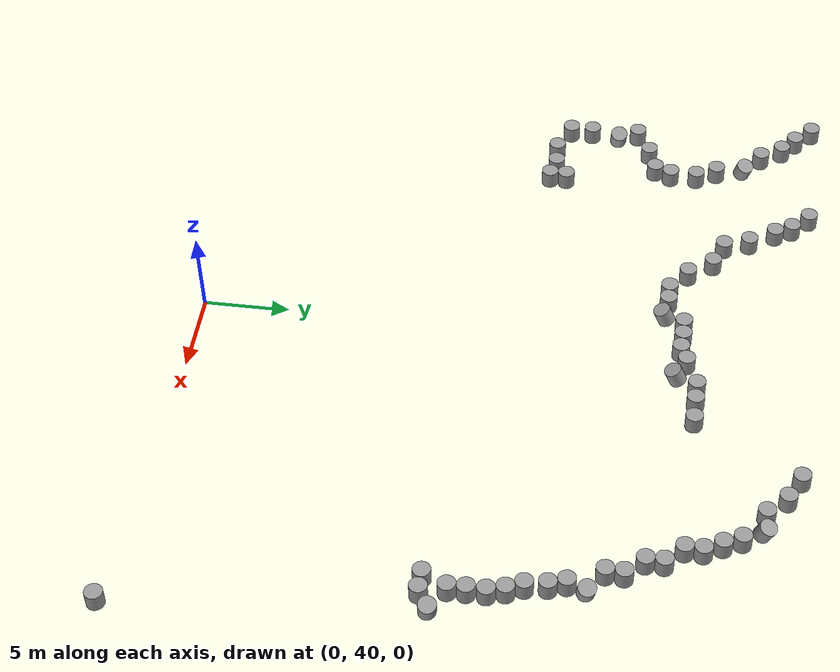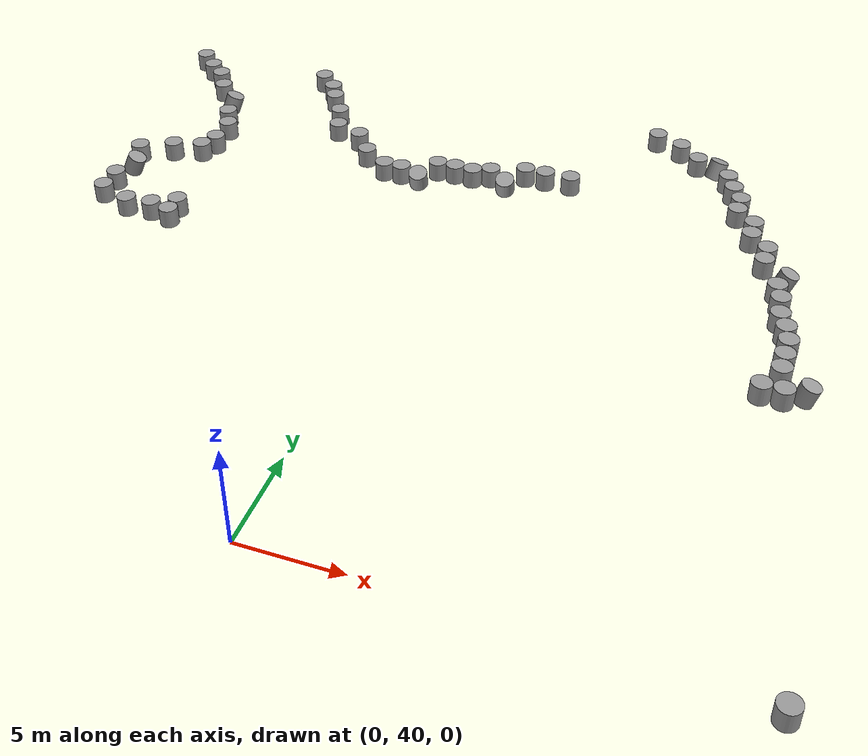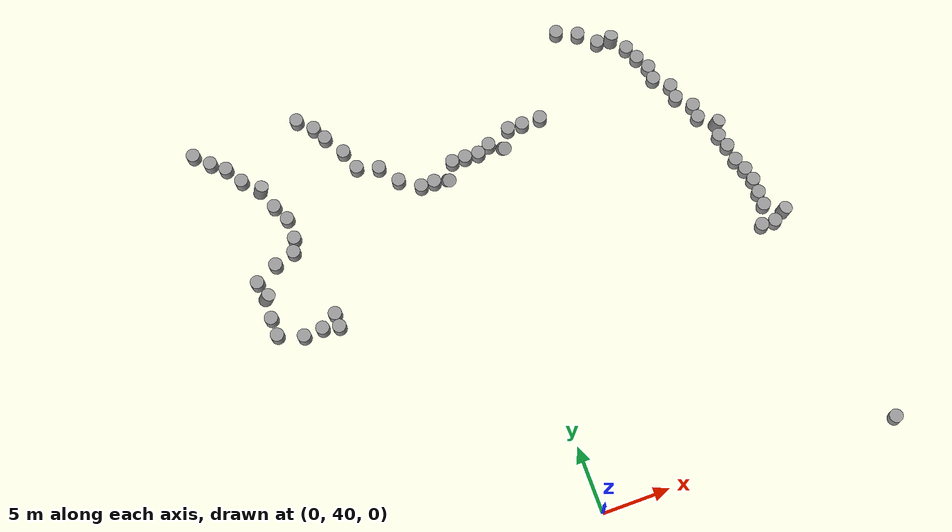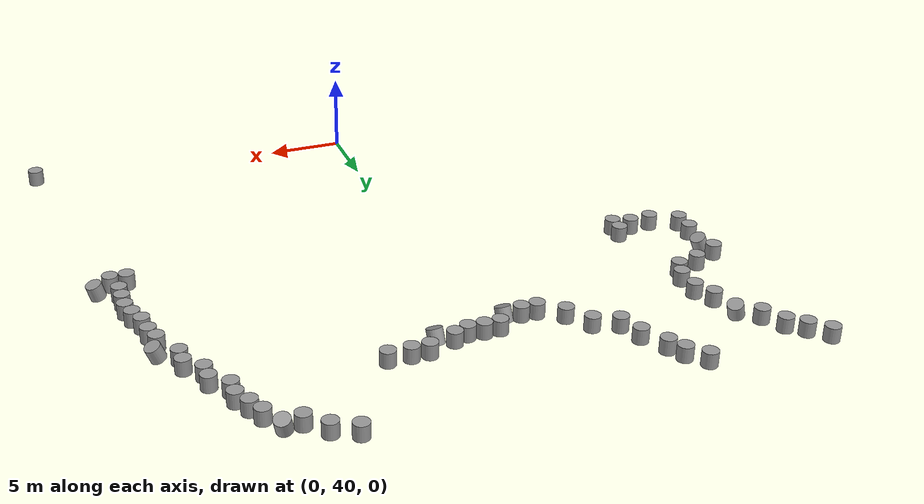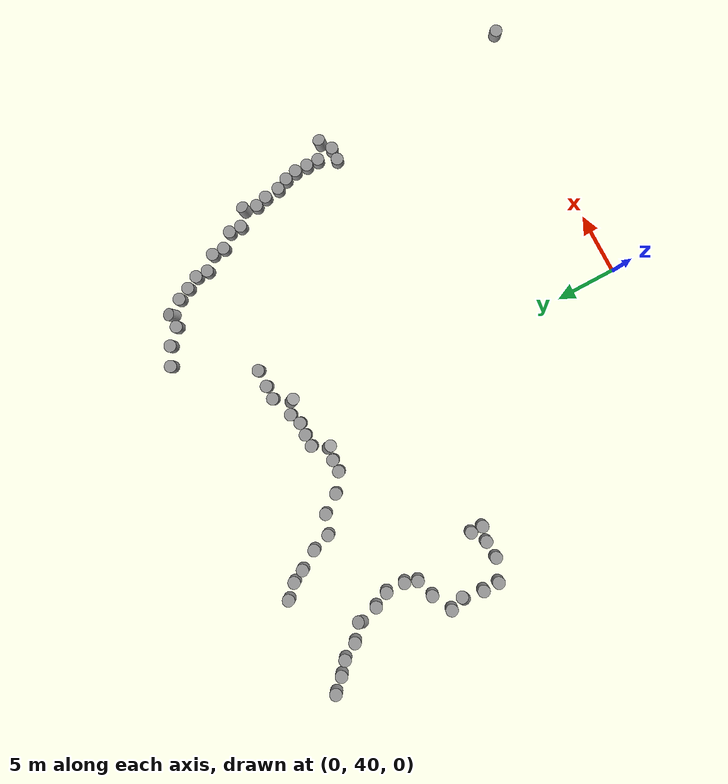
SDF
<sdf version="1.7">
 <world name="default">
  <model name="unit_cylinder">
   <pose>10.9815 74.3057 0.451272 -0.000182 0.00012 -0.00063</pose>
   <link name="link">
    <inertial>
     <mass>1</mass>
     <inertia><ixx>0.145833</ixx><ixy>0</ixy><ixz>0</ixz><iyy>0.145833</iyy><iyz>0</iyz><izz>0.125</izz></inertia>
    </inertial>
    <collision name="collision">
     <geometry><cylinder><radius>0.5</radius><length>1</length></cylinder></geometry>
    </collision>
    <visual name="visual">
     <geometry><cylinder><radius>0.5</radius><length>1</length></cylinder></geometry>
     <material>
      <script><name>Gazebo/Grey</name><uri>file://media/materials/scripts/gazebo.material</uri></script>
     </material>
    </visual>
   </link>
  </model>
  <model name="unit_cylinder_clone_0">
   <pose>12.1286 73.1952 0.453246 -0.005848 0.001541 -0.314889</pose>
   <link name="link">
    <inertial>
     <mass>1</mass>
     <inertia><ixx>0.145833</ixx><ixy>0</ixy><ixz>0</ixz><iyy>0.145833</iyy><iyz>0</iyz><izz>0.125</izz></inertia>
    </inertial>
    <collision name="collision">
     <geometry><cylinder><radius>0.5</radius><length>1</length></cylinder></geometry>
    </collision>
    <visual name="visual">
     <geometry><cylinder><radius>0.5</radius><length>1</length></cylinder></geometry>
     <material>
      <script><name>Gazebo/Grey</name><uri>file://media/materials/scripts/gazebo.material</uri></script>
     </material>
    </visual>
   </link>
  </model>
  <model name="unit_cylinder_clone_1">
   <pose>13.2056 73.1553 0.399914 -0.325351 0.200787 -0.038615</pose>
   <link name="link">
    <inertial>
     <mass>1</mass>
     <inertia><ixx>0.145833</ixx><ixy>0</ixy><ixz>0</ixz><iyy>0.145833</iyy><iyz>0</iyz><izz>0.125</izz></inertia>
    </inertial>
    <collision name="collision">
     <geometry><cylinder><radius>0.5</radius><length>1</length></cylinder></geometry>
    </collision>
    <visual name="visual">
     <geometry><cylinder><radius>0.5</radius><length>1</length></cylinder></geometry>
     <material>
      <script><name>Gazebo/Grey</name><uri>file://media/materials/scripts/gazebo.material</uri></script>
     </material>
    </visual>
   </link>
  </model>
  <model name="unit_cylinder_clone_2">
   <pose>14.0002 72.0002 0.451291 -6.3e-05 0.000114 0.001883</pose>
   <link name="link">
    <inertial>
     <mass>1</mass>
     <inertia><ixx>0.145833</ixx><ixy>0</ixy><ixz>0</ixz><iyy>0.145833</iyy><iyz>0</iyz><izz>0.125</izz></inertia>
    </inertial>
    <collision name="collision">
     <geometry><cylinder><radius>0.5</radius><length>1</length></cylinder></geometry>
    </collision>
    <visual name="visual">
     <geometry><cylinder><radius>0.5</radius><length>1</length></cylinder></geometry>
     <material>
      <script><name>Gazebo/Grey</name><uri>file://media/materials/scripts/gazebo.material</uri></script>
     </material>
    </visual>
   </link>
  </model>
  <model name="unit_cylinder_clone_3">
   <pose>14.4645 70.9999 0.45129 -1e-06 1e-05 -6e-06</pose>
   <link name="link">
    <inertial>
     <mass>1</mass>
     <inertia><ixx>0.145833</ixx><ixy>0</ixy><ixz>0</ixz><iyy>0.145833</iyy><iyz>0</iyz><izz>0.125</izz></inertia>
    </inertial>
    <collision name="collision">
     <geometry><cylinder><radius>0.5</radius><length>1</length></cylinder></geometry>
    </collision>
    <visual name="visual">
     <geometry><cylinder><radius>0.5</radius><length>1</length></cylinder></geometry>
     <material>
      <script><name>Gazebo/Grey</name><uri>file://media/materials/scripts/gazebo.material</uri></script>
     </material>
    </visual>
   </link>
  </model>
  <model name="unit_cylinder_clone_4">
   <pose>14.9998 69.9998 0.451286 -3e-06 -4e-06 -0.000215</pose>
   <link name="link">
    <inertial>
     <mass>1</mass>
     <inertia><ixx>0.145833</ixx><ixy>0</ixy><ixz>0</ixz><iyy>0.145833</iyy><iyz>0</iyz><izz>0.125</izz></inertia>
    </inertial>
    <collision name="collision">
     <geometry><cylinder><radius>0.5</radius><length>1</length></cylinder></geometry>
    </collision>
    <visual name="visual">
     <geometry><cylinder><radius>0.5</radius><length>1</length></cylinder></geometry>
     <material>
      <script><name>Gazebo/Grey</name><uri>file://media/materials/scripts/gazebo.material</uri></script>
     </material>
    </visual>
   </link>
  </model>
  <model name="unit_cylinder_clone_5">
   <pose>15.0001 68.9998 0.451281 1e-06 -7e-06 0.000205</pose>
   <link name="link">
    <inertial>
     <mass>1</mass>
     <inertia><ixx>0.145833</ixx><ixy>0</ixy><ixz>0</ixz><iyy>0.145833</iyy><iyz>0</iyz><izz>0.125</izz></inertia>
    </inertial>
    <collision name="collision">
     <geometry><cylinder><radius>0.5</radius><length>1</length></cylinder></geometry>
    </collision>
    <visual name="visual">
     <geometry><cylinder><radius>0.5</radius><length>1</length></cylinder></geometry>
     <material>
      <script><name>Gazebo/Grey</name><uri>file://media/materials/scripts/gazebo.material</uri></script>
     </material>
    </visual>
   </link>
  </model>
  <model name="unit_cylinder_clone_6">
   <pose>16.0073 68.0187 0.451294 1e-06 -1.5e-05 0.021599</pose>
   <link name="link">
    <inertial>
     <mass>1</mass>
     <inertia><ixx>0.145833</ixx><ixy>0</ixy><ixz>0</ixz><iyy>0.145833</iyy><iyz>0</iyz><izz>0.125</izz></inertia>
    </inertial>
    <collision name="collision">
     <geometry><cylinder><radius>0.5</radius><length>1</length></cylinder></geometry>
    </collision>
    <visual name="visual">
     <geometry><cylinder><radius>0.5</radius><length>1</length></cylinder></geometry>
     <material>
      <script><name>Gazebo/Grey</name><uri>file://media/materials/scripts/gazebo.material</uri></script>
     </material>
    </visual>
   </link>
  </model>
  <model name="unit_cylinder_clone_7">
   <pose>16.0394 67.0187 0.451285 1e-06 -6e-06 0.005178</pose>
   <link name="link">
    <inertial>
     <mass>1</mass>
     <inertia><ixx>0.145833</ixx><ixy>0</ixy><ixz>0</ixz><iyy>0.145833</iyy><iyz>0</iyz><izz>0.125</izz></inertia>
    </inertial>
    <collision name="collision">
     <geometry><cylinder><radius>0.5</radius><length>1</length></cylinder></geometry>
    </collision>
    <visual name="visual">
     <geometry><cylinder><radius>0.5</radius><length>1</length></cylinder></geometry>
     <material>
      <script><name>Gazebo/Grey</name><uri>file://media/materials/scripts/gazebo.material</uri></script>
     </material>
    </visual>
   </link>
  </model>
  <model name="unit_cylinder_clone_8">
   <pose>16.9989 66.0019 0.452892 -0.001909 -0.00089 -0.000228</pose>
   <link name="link">
    <inertial>
     <mass>1</mass>
     <inertia><ixx>0.145833</ixx><ixy>0</ixy><ixz>0</ixz><iyy>0.145833</iyy><iyz>0</iyz><izz>0.125</izz></inertia>
    </inertial>
    <collision name="collision">
     <geometry><cylinder><radius>0.5</radius><length>1</length></cylinder></geometry>
    </collision>
    <visual name="visual">
     <geometry><cylinder><radius>0.5</radius><length>1</length></cylinder></geometry>
     <material>
      <script><name>Gazebo/Grey</name><uri>file://media/materials/scripts/gazebo.material</uri></script>
     </material>
    </visual>
   </link>
  </model>
  <model name="unit_cylinder_clone_11">
   <pose>18.362 60.9371 0.451444 -0.000161 0.00036 -0.029223</pose>
   <link name="link">
    <inertial>
     <mass>1</mass>
     <inertia><ixx>0.145833</ixx><ixy>0</ixy><ixz>0</ixz><iyy>0.145833</iyy><iyz>0</iyz><izz>0.125</izz></inertia>
    </inertial>
    <collision name="collision">
     <geometry><cylinder><radius>0.5</radius><length>1</length></cylinder></geometry>
    </collision>
    <visual name="visual">
     <geometry><cylinder><radius>0.5</radius><length>1</length></cylinder></geometry>
     <material>
      <script><name>Gazebo/Grey</name><uri>file://media/materials/scripts/gazebo.material</uri></script>
     </material>
    </visual>
   </link>
  </model>
  <model name="unit_cylinder_clone_12">
   <pose>18.7639 60.0214 0.451308 3.2e-05 -6.5e-05 0.05836</pose>
   <link name="link">
    <inertial>
     <mass>1</mass>
     <inertia><ixx>0.145833</ixx><ixy>0</ixy><ixz>0</ixz><iyy>0.145833</iyy><iyz>0</iyz><izz>0.125</izz></inertia>
    </inertial>
    <collision name="collision">
     <geometry><cylinder><radius>0.5</radius><length>1</length></cylinder></geometry>
    </collision>
    <visual name="visual">
     <geometry><cylinder><radius>0.5</radius><length>1</length></cylinder></geometry>
     <material>
      <script><name>Gazebo/Grey</name><uri>file://media/materials/scripts/gazebo.material</uri></script>
     </material>
    </visual>
   </link>
  </model>
  <model name="unit_cylinder_clone_13">
   <pose>19.0089 59.0467 0.451293 2.5e-05 -0.000108 0.000934</pose>
   <link name="link">
    <inertial>
     <mass>1</mass>
     <inertia><ixx>0.145833</ixx><ixy>0</ixy><ixz>0</ixz><iyy>0.145833</iyy><iyz>0</iyz><izz>0.125</izz></inertia>
    </inertial>
    <collision name="collision">
     <geometry><cylinder><radius>0.5</radius><length>1</length></cylinder></geometry>
    </collision>
    <visual name="visual">
     <geometry><cylinder><radius>0.5</radius><length>1</length></cylinder></geometry>
     <material>
      <script><name>Gazebo/Grey</name><uri>file://media/materials/scripts/gazebo.material</uri></script>
     </material>
    </visual>
   </link>
  </model>
  <model name="unit_cylinder_clone_14">
   <pose>19.0002 57.9997 0.451442 -6e-06 0.000332 -0.000485</pose>
   <link name="link">
    <inertial>
     <mass>1</mass>
     <inertia><ixx>0.145833</ixx><ixy>0</ixy><ixz>0</ixz><iyy>0.145833</iyy><iyz>0</iyz><izz>0.125</izz></inertia>
    </inertial>
    <collision name="collision">
     <geometry><cylinder><radius>0.5</radius><length>1</length></cylinder></geometry>
    </collision>
    <visual name="visual">
     <geometry><cylinder><radius>0.5</radius><length>1</length></cylinder></geometry>
     <material>
      <script><name>Gazebo/Grey</name><uri>file://media/materials/scripts/gazebo.material</uri></script>
     </material>
    </visual>
   </link>
  </model>
  <model name="unit_cylinder_clone_15">
   <pose>19.0001 56.9993 0.450902 0.000544 0.000122 -0.000184</pose>
   <link name="link">
    <inertial>
     <mass>1</mass>
     <inertia><ixx>0.145833</ixx><ixy>0</ixy><ixz>0</ixz><iyy>0.145833</iyy><iyz>0</iyz><izz>0.125</izz></inertia>
    </inertial>
    <collision name="collision">
     <geometry><cylinder><radius>0.5</radius><length>1</length></cylinder></geometry>
    </collision>
    <visual name="visual">
     <geometry><cylinder><radius>0.5</radius><length>1</length></cylinder></geometry>
     <material>
      <script><name>Gazebo/Grey</name><uri>file://media/materials/scripts/gazebo.material</uri></script>
     </material>
    </visual>
   </link>
  </model>
  <model name="unit_cylinder_clone_16">
   <pose>20.2887 56.1657 0.370309 -0.101618 0.266413 -0.132281</pose>
   <link name="link">
    <inertial>
     <mass>1</mass>
     <inertia><ixx>0.145833</ixx><ixy>0</ixy><ixz>0</ixz><iyy>0.145833</iyy><iyz>0</iyz><izz>0.125</izz></inertia>
    </inertial>
    <collision name="collision">
     <geometry><cylinder><radius>0.5</radius><length>1</length></cylinder></geometry>
    </collision>
    <visual name="visual">
     <geometry><cylinder><radius>0.5</radius><length>1</length></cylinder></geometry>
     <material>
      <script><name>Gazebo/Grey</name><uri>file://media/materials/scripts/gazebo.material</uri></script>
     </material>
    </visual>
   </link>
  </model>
  <model name="unit_cylinder_clone_17">
   <pose>19.3175 55.5652 0.451074 -0.001404 -0.000209 0.07838</pose>
   <link name="link">
    <inertial>
     <mass>1</mass>
     <inertia><ixx>0.145833</ixx><ixy>0</ixy><ixz>0</ixz><iyy>0.145833</iyy><iyz>0</iyz><izz>0.125</izz></inertia>
    </inertial>
    <collision name="collision">
     <geometry><cylinder><radius>0.5</radius><length>1</length></cylinder></geometry>
    </collision>
    <visual name="visual">
     <geometry><cylinder><radius>0.5</radius><length>1</length></cylinder></geometry>
     <material>
      <script><name>Gazebo/Grey</name><uri>file://media/materials/scripts/gazebo.material</uri></script>
     </material>
    </visual>
   </link>
  </model>
  <model name="unit_cylinder_clone_18">
   <pose>18.2992 55.5987 0.450932 -0.000832 -0.000215 -0.020841</pose>
   <link name="link">
    <inertial>
     <mass>1</mass>
     <inertia><ixx>0.145833</ixx><ixy>0</ixy><ixz>0</ixz><iyy>0.145833</iyy><iyz>0</iyz><izz>0.125</izz></inertia>
    </inertial>
    <collision name="collision">
     <geometry><cylinder><radius>0.5</radius><length>1</length></cylinder></geometry>
    </collision>
    <visual name="visual">
     <geometry><cylinder><radius>0.5</radius><length>1</length></cylinder></geometry>
     <material>
      <script><name>Gazebo/Grey</name><uri>file://media/materials/scripts/gazebo.material</uri></script>
     </material>
    </visual>
   </link>
  </model>
  <model name="unit_cylinder_clone">
   <pose>18.2082 62.1497 0.451365 0.000171 1.6e-05 0.137302</pose>
   <link name="link">
    <inertial>
     <mass>1</mass>
     <inertia><ixx>0.145833</ixx><ixy>0</ixy><ixz>0</ixz><iyy>0.145833</iyy><iyz>0</iyz><izz>0.125</izz></inertia>
    </inertial>
    <collision name="collision">
     <geometry><cylinder><radius>0.5</radius><length>1</length></cylinder></geometry>
    </collision>
    <visual name="visual">
     <geometry><cylinder><radius>0.5</radius><length>1</length></cylinder></geometry>
     <material>
      <script><name>Gazebo/Grey</name><uri>file://media/materials/scripts/gazebo.material</uri></script>
     </material>
    </visual>
   </link>
  </model>
  <model name="unit_cylinder_clone_9">
   <pose>17.9166 63.1062 0.452393 0.000739 -0.001652 -0.03629</pose>
   <link name="link">
    <inertial>
     <mass>1</mass>
     <inertia><ixx>0.145833</ixx><ixy>0</ixy><ixz>0</ixz><iyy>0.145833</iyy><iyz>0</iyz><izz>0.125</izz></inertia>
    </inertial>
    <collision name="collision">
     <geometry><cylinder><radius>0.5</radius><length>1</length></cylinder></geometry>
    </collision>
    <visual name="visual">
     <geometry><cylinder><radius>0.5</radius><length>1</length></cylinder></geometry>
     <material>
      <script><name>Gazebo/Grey</name><uri>file://media/materials/scripts/gazebo.material</uri></script>
     </material>
    </visual>
   </link>
  </model>
  <model name="unit_cylinder_clone_10">
   <pose>18.1963 64.147 0.398262 -0.158294 0.340891 -0.163728</pose>
   <link name="link">
    <inertial>
     <mass>1</mass>
     <inertia><ixx>0.145833</ixx><ixy>0</ixy><ixz>0</ixz><iyy>0.145833</iyy><iyz>0</iyz><izz>0.125</izz></inertia>
    </inertial>
    <collision name="collision">
     <geometry><cylinder><radius>0.5</radius><length>1</length></cylinder></geometry>
    </collision>
    <visual name="visual">
     <geometry><cylinder><radius>0.5</radius><length>1</length></cylinder></geometry>
     <material>
      <script><name>Gazebo/Grey</name><uri>file://media/materials/scripts/gazebo.material</uri></script>
     </material>
    </visual>
   </link>
  </model>
  <model name="unit_cylinder_clone_19">
   <pose>16.9993 65.0019 0.45479 -0.001906 -0.000899 0.000167</pose>
   <link name="link">
    <inertial>
     <mass>1</mass>
     <inertia><ixx>0.145833</ixx><ixy>0</ixy><ixz>0</ixz><iyy>0.145833</iyy><iyz>0</iyz><izz>0.125</izz></inertia>
    </inertial>
    <collision name="collision">
     <geometry><cylinder><radius>0.5</radius><length>1</length></cylinder></geometry>
    </collision>
    <visual name="visual">
     <geometry><cylinder><radius>0.5</radius><length>1</length></cylinder></geometry>
     <material>
      <script><name>Gazebo/Grey</name><uri>file://media/materials/scripts/gazebo.material</uri></script>
     </material>
    </visual>
   </link>
  </model>
  <model name="unit_cylinder_clone_92">
   <pose>21.7916 39.1642 0.449993 6e-06 -0 -0.000432</pose>
   <link name="link">
    <inertial>
     <mass>1</mass>
     <inertia><ixx>0.145833</ixx><ixy>0</ixy><ixz>0</ixz><iyy>0.145833</iyy><iyz>0</iyz><izz>0.125</izz></inertia>
    </inertial>
    <collision name="collision">
     <geometry><cylinder><radius>0.5</radius><length>1</length></cylinder></geometry>
    </collision>
    <visual name="visual">
     <geometry><cylinder><radius>0.5</radius><length>1</length></cylinder></geometry>
     <material>
      <script><name>Gazebo/Grey</name><uri>file://media/materials/scripts/gazebo.material</uri></script>
     </material>
    </visual>
   </link>
  </model>
  <model name="unit_cylinder_clone_129">
   <pose>9.51213 74.9999 0.451281 -0 1e-06 -0.000548</pose>
   <link name="link">
    <inertial>
     <mass>1</mass>
     <inertia><ixx>0.145833</ixx><ixy>0</ixy><ixz>0</ixz><iyy>0.145833</iyy><iyz>0</iyz><izz>0.125</izz></inertia>
    </inertial>
    <collision name="collision">
     <geometry><cylinder><radius>0.5</radius><length>1</length></cylinder></geometry>
    </collision>
    <visual name="visual">
     <geometry><cylinder><radius>0.5</radius><length>1</length></cylinder></geometry>
     <material>
      <script><name>Gazebo/Grey</name><uri>file://media/materials/scripts/gazebo.material</uri></script>
     </material>
    </visual>
   </link>
  </model>
  <model name="unit_cylinder_clone_145">
   <pose>-11.0001 74.9998 0.451251 -2e-06 -5e-06 -0.000303</pose>
   <link name="link">
    <inertial>
     <mass>1</mass>
     <inertia><ixx>0.145833</ixx><ixy>0</ixy><ixz>0</ixz><iyy>0.145833</iyy><iyz>0</iyz><izz>0.125</izz></inertia>
    </inertial>
    <collision name="collision">
     <geometry><cylinder><radius>0.5</radius><length>1</length></cylinder></geometry>
    </collision>
    <visual name="visual">
     <geometry><cylinder><radius>0.5</radius><length>1</length></cylinder></geometry>
     <material>
      <script><name>Gazebo/Grey</name><uri>file://media/materials/scripts/gazebo.material</uri></script>
     </material>
    </visual>
   </link>
  </model>
  <model name="unit_cylinder_clone_146">
   <pose>-10 73.9999 0.451252 1e-06 -3e-06 -0.000502</pose>
   <link name="link">
    <inertial>
     <mass>1</mass>
     <inertia><ixx>0.145833</ixx><ixy>0</ixy><ixz>0</ixz><iyy>0.145833</iyy><iyz>0</iyz><izz>0.125</izz></inertia>
    </inertial>
    <collision name="collision">
     <geometry><cylinder><radius>0.5</radius><length>1</length></cylinder></geometry>
    </collision>
    <visual name="visual">
     <geometry><cylinder><radius>0.5</radius><length>1</length></cylinder></geometry>
     <material>
      <script><name>Gazebo/Grey</name><uri>file://media/materials/scripts/gazebo.material</uri></script>
     </material>
    </visual>
   </link>
  </model>
  <model name="unit_cylinder_clone_147">
   <pose>-9.45611 73 0.451244 1e-06 -3e-06 -0.000458</pose>
   <link name="link">
    <inertial>
     <mass>1</mass>
     <inertia><ixx>0.145833</ixx><ixy>0</ixy><ixz>0</ixz><iyy>0.145833</iyy><iyz>0</iyz><izz>0.125</izz></inertia>
    </inertial>
    <collision name="collision">
     <geometry><cylinder><radius>0.5</radius><length>1</length></cylinder></geometry>
    </collision>
    <visual name="visual">
     <geometry><cylinder><radius>0.5</radius><length>1</length></cylinder></geometry>
     <material>
      <script><name>Gazebo/Grey</name><uri>file://media/materials/scripts/gazebo.material</uri></script>
     </material>
    </visual>
   </link>
  </model>
  <model name="unit_cylinder_clone_148">
   <pose>-8.52054 71.4923 0.451254 1e-06 -6e-06 -0.000559</pose>
   <link name="link">
    <inertial>
     <mass>1</mass>
     <inertia><ixx>0.145833</ixx><ixy>0</ixy><ixz>0</ixz><iyy>0.145833</iyy><iyz>0</iyz><izz>0.125</izz></inertia>
    </inertial>
    <collision name="collision">
     <geometry><cylinder><radius>0.5</radius><length>1</length></cylinder></geometry>
    </collision>
    <visual name="visual">
     <geometry><cylinder><radius>0.5</radius><length>1</length></cylinder></geometry>
     <material>
      <script><name>Gazebo/Grey</name><uri>file://media/materials/scripts/gazebo.material</uri></script>
     </material>
    </visual>
   </link>
  </model>
  <model name="unit_cylinder_clone_149">
   <pose>-7.99459 69.9999 0.447981 6.9e-05 0.009447 -0.000524</pose>
   <link name="link">
    <inertial>
     <mass>1</mass>
     <inertia><ixx>0.145833</ixx><ixy>0</ixy><ixz>0</ixz><iyy>0.145833</iyy><iyz>0</iyz><izz>0.125</izz></inertia>
    </inertial>
    <collision name="collision">
     <geometry><cylinder><radius>0.5</radius><length>1</length></cylinder></geometry>
    </collision>
    <visual name="visual">
     <geometry><cylinder><radius>0.5</radius><length>1</length></cylinder></geometry>
     <material>
      <script><name>Gazebo/Grey</name><uri>file://media/materials/scripts/gazebo.material</uri></script>
     </material>
    </visual>
   </link>
  </model>
  <model name="unit_cylinder_clone_150">
   <pose>-6.4589 69.4197 0.440175 0.002913 -0.003846 -0.001682</pose>
   <link name="link">
    <inertial>
     <mass>1</mass>
     <inertia><ixx>0.145833</ixx><ixy>0</ixy><ixz>0</ixz><iyy>0.145833</iyy><iyz>0</iyz><izz>0.125</izz></inertia>
    </inertial>
    <collision name="collision">
     <geometry><cylinder><radius>0.5</radius><length>1</length></cylinder></geometry>
    </collision>
    <visual name="visual">
     <geometry><cylinder><radius>0.5</radius><length>1</length></cylinder></geometry>
     <material>
      <script><name>Gazebo/Grey</name><uri>file://media/materials/scripts/gazebo.material</uri></script>
     </material>
    </visual>
   </link>
  </model>
  <model name="unit_cylinder_clone_151">
   <pose>-5.4186 67.9976 0.443384 0.001729 -0.007276 -0.003815</pose>
   <link name="link">
    <inertial>
     <mass>1</mass>
     <inertia><ixx>0.145833</ixx><ixy>0</ixy><ixz>0</ixz><iyy>0.145833</iyy><iyz>0</iyz><izz>0.125</izz></inertia>
    </inertial>
    <collision name="collision">
     <geometry><cylinder><radius>0.5</radius><length>1</length></cylinder></geometry>
    </collision>
    <visual name="visual">
     <geometry><cylinder><radius>0.5</radius><length>1</length></cylinder></geometry>
     <material>
      <script><name>Gazebo/Grey</name><uri>file://media/materials/scripts/gazebo.material</uri></script>
     </material>
    </visual>
   </link>
  </model>
  <model name="unit_cylinder_clone_152">
   <pose>-4.00009 66.9999 0.451281 -3e-06 -1.3e-05 -0.000576</pose>
   <link name="link">
    <inertial>
     <mass>1</mass>
     <inertia><ixx>0.145833</ixx><ixy>0</ixy><ixz>0</ixz><iyy>0.145833</iyy><iyz>0</iyz><izz>0.125</izz></inertia>
    </inertial>
    <collision name="collision">
     <geometry><cylinder><radius>0.5</radius><length>1</length></cylinder></geometry>
    </collision>
    <visual name="visual">
     <geometry><cylinder><radius>0.5</radius><length>1</length></cylinder></geometry>
     <material>
      <script><name>Gazebo/Grey</name><uri>file://media/materials/scripts/gazebo.material</uri></script>
     </material>
    </visual>
   </link>
  </model>
  <model name="unit_cylinder_clone_177">
   <pose>-19.0003 74.9994 0.451286 -2.4e-05 3.5e-05 0.000251</pose>
   <link name="link">
    <inertial>
     <mass>1</mass>
     <inertia><ixx>0.145833</ixx><ixy>0</ixy><ixz>0</ixz><iyy>0.145833</iyy><iyz>0</iyz><izz>0.125</izz></inertia>
    </inertial>
    <collision name="collision">
     <geometry><cylinder><radius>0.5</radius><length>1</length></cylinder></geometry>
    </collision>
    <visual name="visual">
     <geometry><cylinder><radius>0.5</radius><length>1</length></cylinder></geometry>
     <material>
      <script><name>Gazebo/Grey</name><uri>file://media/materials/scripts/gazebo.material</uri></script>
     </material>
    </visual>
   </link>
  </model>
  <model name="unit_cylinder_clone_178">
   <pose>-18.0005 73.9996 0.450978 0.000747 -0.001088 -0.00053</pose>
   <link name="link">
    <inertial>
     <mass>1</mass>
     <inertia><ixx>0.145833</ixx><ixy>0</ixy><ixz>0</ixz><iyy>0.145833</iyy><iyz>0</iyz><izz>0.125</izz></inertia>
    </inertial>
    <collision name="collision">
     <geometry><cylinder><radius>0.5</radius><length>1</length></cylinder></geometry>
    </collision>
    <visual name="visual">
     <geometry><cylinder><radius>0.5</radius><length>1</length></cylinder></geometry>
     <material>
      <script><name>Gazebo/Grey</name><uri>file://media/materials/scripts/gazebo.material</uri></script>
     </material>
    </visual>
   </link>
  </model>
  <model name="unit_cylinder_clone_179">
   <pose>-17.047 73.1949 0.451294 -0.000171 0.000254 -0.000489</pose>
   <link name="link">
    <inertial>
     <mass>1</mass>
     <inertia><ixx>0.145833</ixx><ixy>0</ixy><ixz>0</ixz><iyy>0.145833</iyy><iyz>0</iyz><izz>0.125</izz></inertia>
    </inertial>
    <collision name="collision">
     <geometry><cylinder><radius>0.5</radius><length>1</length></cylinder></geometry>
    </collision>
    <visual name="visual">
     <geometry><cylinder><radius>0.5</radius><length>1</length></cylinder></geometry>
     <material>
      <script><name>Gazebo/Grey</name><uri>file://media/materials/scripts/gazebo.material</uri></script>
     </material>
    </visual>
   </link>
  </model>
  <model name="unit_cylinder_clone_180">
   <pose>-16.2501 71.9194 0.451302 5.8e-05 -7.9e-05 -0.000584</pose>
   <link name="link">
    <inertial>
     <mass>1</mass>
     <inertia><ixx>0.145833</ixx><ixy>0</ixy><ixz>0</ixz><iyy>0.145833</iyy><iyz>0</iyz><izz>0.125</izz></inertia>
    </inertial>
    <collision name="collision">
     <geometry><cylinder><radius>0.5</radius><length>1</length></cylinder></geometry>
    </collision>
    <visual name="visual">
     <geometry><cylinder><radius>0.5</radius><length>1</length></cylinder></geometry>
     <material>
      <script><name>Gazebo/Grey</name><uri>file://media/materials/scripts/gazebo.material</uri></script>
     </material>
    </visual>
   </link>
  </model>
  <model name="unit_cylinder_clone_181">
   <pose>-15.1344 70.8805 0.396621 -0.211316 0.304521 -0.028066</pose>
   <link name="link">
    <inertial>
     <mass>1</mass>
     <inertia><ixx>0.145833</ixx><ixy>0</ixy><ixz>0</ixz><iyy>0.145833</iyy><iyz>0</iyz><izz>0.125</izz></inertia>
    </inertial>
    <collision name="collision">
     <geometry><cylinder><radius>0.5</radius><length>1</length></cylinder></geometry>
    </collision>
    <visual name="visual">
     <geometry><cylinder><radius>0.5</radius><length>1</length></cylinder></geometry>
     <material>
      <script><name>Gazebo/Grey</name><uri>file://media/materials/scripts/gazebo.material</uri></script>
     </material>
    </visual>
   </link>
  </model>
  <model name="unit_cylinder_clone_182">
   <pose>-14.6129 69.218 0.448766 0.009925 -0.014471 -0.000805</pose>
   <link name="link">
    <inertial>
     <mass>1</mass>
     <inertia><ixx>0.145833</ixx><ixy>0</ixy><ixz>0</ixz><iyy>0.145833</iyy><iyz>0</iyz><izz>0.125</izz></inertia>
    </inertial>
    <collision name="collision">
     <geometry><cylinder><radius>0.5</radius><length>1</length></cylinder></geometry>
    </collision>
    <visual name="visual">
     <geometry><cylinder><radius>0.5</radius><length>1</length></cylinder></geometry>
     <material>
      <script><name>Gazebo/Grey</name><uri>file://media/materials/scripts/gazebo.material</uri></script>
     </material>
    </visual>
   </link>
  </model>
  <model name="unit_cylinder_clone_183">
   <pose>-14.0054 67.9961 0.446916 0.007415 -0.010811 -0.000772</pose>
   <link name="link">
    <inertial>
     <mass>1</mass>
     <inertia><ixx>0.145833</ixx><ixy>0</ixy><ixz>0</ixz><iyy>0.145833</iyy><iyz>0</iyz><izz>0.125</izz></inertia>
    </inertial>
    <collision name="collision">
     <geometry><cylinder><radius>0.5</radius><length>1</length></cylinder></geometry>
    </collision>
    <visual name="visual">
     <geometry><cylinder><radius>0.5</radius><length>1</length></cylinder></geometry>
     <material>
      <script><name>Gazebo/Grey</name><uri>file://media/materials/scripts/gazebo.material</uri></script>
     </material>
    </visual>
   </link>
  </model>
  <model name="unit_cylinder_clone_184">
   <pose>-13.994 66.4136 0.443321 -0.00583 0.011209 -0.000483</pose>
   <link name="link">
    <inertial>
     <mass>1</mass>
     <inertia><ixx>0.145833</ixx><ixy>0</ixy><ixz>0</ixz><iyy>0.145833</iyy><iyz>0</iyz><izz>0.125</izz></inertia>
    </inertial>
    <collision name="collision">
     <geometry><cylinder><radius>0.5</radius><length>1</length></cylinder></geometry>
    </collision>
    <visual name="visual">
     <geometry><cylinder><radius>0.5</radius><length>1</length></cylinder></geometry>
     <material>
      <script><name>Gazebo/Grey</name><uri>file://media/materials/scripts/gazebo.material</uri></script>
     </material>
    </visual>
   </link>
  </model>
  <model name="unit_cylinder_clone_185">
   <pose>-14.3575 65.4257 0.451315 -6e-06 3e-06 -0.000586</pose>
   <link name="link">
    <inertial>
     <mass>1</mass>
     <inertia><ixx>0.145833</ixx><ixy>0</ixy><ixz>0</ixz><iyy>0.145833</iyy><iyz>0</iyz><izz>0.125</izz></inertia>
    </inertial>
    <collision name="collision">
     <geometry><cylinder><radius>0.5</radius><length>1</length></cylinder></geometry>
    </collision>
    <visual name="visual">
     <geometry><cylinder><radius>0.5</radius><length>1</length></cylinder></geometry>
     <material>
      <script><name>Gazebo/Grey</name><uri>file://media/materials/scripts/gazebo.material</uri></script>
     </material>
    </visual>
   </link>
  </model>
  <model name="unit_cylinder_clone_186">
   <pose>-15.8777 64.9526 0.451313 -3e-06 1e-06 -0.000544</pose>
   <link name="link">
    <inertial>
     <mass>1</mass>
     <inertia><ixx>0.145833</ixx><ixy>0</ixy><ixz>0</ixz><iyy>0.145833</iyy><iyz>0</iyz><izz>0.125</izz></inertia>
    </inertial>
    <collision name="collision">
     <geometry><cylinder><radius>0.5</radius><length>1</length></cylinder></geometry>
    </collision>
    <visual name="visual">
     <geometry><cylinder><radius>0.5</radius><length>1</length></cylinder></geometry>
     <material>
      <script><name>Gazebo/Grey</name><uri>file://media/materials/scripts/gazebo.material</uri></script>
     </material>
    </visual>
   </link>
  </model>
  <model name="unit_cylinder_clone_187">
   <pose>-17.5325 64.1209 0.451321 -2e-06 -4e-06 -0.000598</pose>
   <link name="link">
    <inertial>
     <mass>1</mass>
     <inertia><ixx>0.145833</ixx><ixy>0</ixy><ixz>0</ixz><iyy>0.145833</iyy><iyz>0</iyz><izz>0.125</izz></inertia>
    </inertial>
    <collision name="collision">
     <geometry><cylinder><radius>0.5</radius><length>1</length></cylinder></geometry>
    </collision>
    <visual name="visual">
     <geometry><cylinder><radius>0.5</radius><length>1</length></cylinder></geometry>
     <material>
      <script><name>Gazebo/Grey</name><uri>file://media/materials/scripts/gazebo.material</uri></script>
     </material>
    </visual>
   </link>
  </model>
  <model name="unit_cylinder_clone_188">
   <pose>-17.2351 62.9248 0.407861 -0.07244 0.403889 -0.010173</pose>
   <link name="link">
    <inertial>
     <mass>1</mass>
     <inertia><ixx>0.145833</ixx><ixy>0</ixy><ixz>0</ixz><iyy>0.145833</iyy><iyz>0</iyz><izz>0.125</izz></inertia>
    </inertial>
    <collision name="collision">
     <geometry><cylinder><radius>0.5</radius><length>1</length></cylinder></geometry>
    </collision>
    <visual name="visual">
     <geometry><cylinder><radius>0.5</radius><length>1</length></cylinder></geometry>
     <material>
      <script><name>Gazebo/Grey</name><uri>file://media/materials/scripts/gazebo.material</uri></script>
     </material>
    </visual>
   </link>
  </model>
  <model name="unit_cylinder_clone_189">
   <pose>-17.4041 61.2449 0.451278 3.5e-05 -0.000123 -0.000587</pose>
   <link name="link">
    <inertial>
     <mass>1</mass>
     <inertia><ixx>0.145833</ixx><ixy>0</ixy><ixz>0</ixz><iyy>0.145833</iyy><iyz>0</iyz><izz>0.125</izz></inertia>
    </inertial>
    <collision name="collision">
     <geometry><cylinder><radius>0.5</radius><length>1</length></cylinder></geometry>
    </collision>
    <visual name="visual">
     <geometry><cylinder><radius>0.5</radius><length>1</length></cylinder></geometry>
     <material>
      <script><name>Gazebo/Grey</name><uri>file://media/materials/scripts/gazebo.material</uri></script>
     </material>
    </visual>
   </link>
  </model>
  <model name="unit_cylinder_clone_190">
   <pose>-17.3833 59.9142 0.451232 3.6e-05 -0.000118 -0.000594</pose>
   <link name="link">
    <inertial>
     <mass>1</mass>
     <inertia><ixx>0.145833</ixx><ixy>0</ixy><ixz>0</ixz><iyy>0.145833</iyy><iyz>0</iyz><izz>0.125</izz></inertia>
    </inertial>
    <collision name="collision">
     <geometry><cylinder><radius>0.5</radius><length>1</length></cylinder></geometry>
    </collision>
    <visual name="visual">
     <geometry><cylinder><radius>0.5</radius><length>1</length></cylinder></geometry>
     <material>
      <script><name>Gazebo/Grey</name><uri>file://media/materials/scripts/gazebo.material</uri></script>
     </material>
    </visual>
   </link>
  </model>
  <model name="unit_cylinder_clone_191">
   <pose>-15.5936 59.1934 0.450966 0.000666 0.000127 -0.000635</pose>
   <link name="link">
    <inertial>
     <mass>1</mass>
     <inertia><ixx>0.145833</ixx><ixy>0</ixy><ixz>0</ixz><iyy>0.145833</iyy><iyz>0</iyz><izz>0.125</izz></inertia>
    </inertial>
    <collision name="collision">
     <geometry><cylinder><radius>0.5</radius><length>1</length></cylinder></geometry>
    </collision>
    <visual name="visual">
     <geometry><cylinder><radius>0.5</radius><length>1</length></cylinder></geometry>
     <material>
      <script><name>Gazebo/Grey</name><uri>file://media/materials/scripts/gazebo.material</uri></script>
     </material>
    </visual>
   </link>
  </model>
  <model name="unit_cylinder_clone_192">
   <pose>-14.1729 59.2835 0.450847 0.000683 0.000122 -0.000542</pose>
   <link name="link">
    <inertial>
     <mass>1</mass>
     <inertia><ixx>0.145833</ixx><ixy>0</ixy><ixz>0</ixz><iyy>0.145833</iyy><iyz>0</iyz><izz>0.125</izz></inertia>
    </inertial>
    <collision name="collision">
     <geometry><cylinder><radius>0.5</radius><length>1</length></cylinder></geometry>
    </collision>
    <visual name="visual">
     <geometry><cylinder><radius>0.5</radius><length>1</length></cylinder></geometry>
     <material>
      <script><name>Gazebo/Grey</name><uri>file://media/materials/scripts/gazebo.material</uri></script>
     </material>
    </visual>
   </link>
  </model>
  <model name="unit_cylinder_clone_193">
   <pose>-13 59.9995 0.451184 0.000681 0.00012 -0.000578</pose>
   <link name="link">
    <inertial>
     <mass>1</mass>
     <inertia><ixx>0.145833</ixx><ixy>0</ixy><ixz>0</ixz><iyy>0.145833</iyy><iyz>0</iyz><izz>0.125</izz></inertia>
    </inertial>
    <collision name="collision">
     <geometry><cylinder><radius>0.5</radius><length>1</length></cylinder></geometry>
    </collision>
    <visual name="visual">
     <geometry><cylinder><radius>0.5</radius><length>1</length></cylinder></geometry>
     <material>
      <script><name>Gazebo/Grey</name><uri>file://media/materials/scripts/gazebo.material</uri></script>
     </material>
    </visual>
   </link>
  </model>
  <model name="unit_cylinder_clone_194">
   <pose>-13 58.9995 0.450514 0.000678 0.000118 -0.000575</pose>
   <link name="link">
    <inertial>
     <mass>1</mass>
     <inertia><ixx>0.145833</ixx><ixy>0</ixy><ixz>0</ixz><iyy>0.145833</iyy><iyz>0</iyz><izz>0.125</izz></inertia>
    </inertial>
    <collision name="collision">
     <geometry><cylinder><radius>0.5</radius><length>1</length></cylinder></geometry>
    </collision>
    <visual name="visual">
     <geometry><cylinder><radius>0.5</radius><length>1</length></cylinder></geometry>
     <material>
      <script><name>Gazebo/Grey</name><uri>file://media/materials/scripts/gazebo.material</uri></script>
     </material>
    </visual>
   </link>
  </model>
  <model name="unit_cylinder_clone_195">
   <pose>-3.00009 66.9999 0.451281 1.2e-05 -3e-06 -0.000586</pose>
   <link name="link">
    <inertial>
     <mass>1</mass>
     <inertia><ixx>0.145833</ixx><ixy>0</ixy><ixz>0</ixz><iyy>0.145833</iyy><iyz>0</iyz><izz>0.125</izz></inertia>
    </inertial>
    <collision name="collision">
     <geometry><cylinder><radius>0.5</radius><length>1</length></cylinder></geometry>
    </collision>
    <visual name="visual">
     <geometry><cylinder><radius>0.5</radius><length>1</length></cylinder></geometry>
     <material>
      <script><name>Gazebo/Grey</name><uri>file://media/materials/scripts/gazebo.material</uri></script>
     </material>
    </visual>
   </link>
  </model>
  <model name="unit_cylinder_clone_196">
   <pose>-1.95962 66.819 0.397743 0.365891 0.072633 0.010014</pose>
   <link name="link">
    <inertial>
     <mass>1</mass>
     <inertia><ixx>0.145833</ixx><ixy>0</ixy><ixz>0</ixz><iyy>0.145833</iyy><iyz>0</iyz><izz>0.125</izz></inertia>
    </inertial>
    <collision name="collision">
     <geometry><cylinder><radius>0.5</radius><length>1</length></cylinder></geometry>
    </collision>
    <visual name="visual">
     <geometry><cylinder><radius>0.5</radius><length>1</length></cylinder></geometry>
     <material>
      <script><name>Gazebo/Grey</name><uri>file://media/materials/scripts/gazebo.material</uri></script>
     </material>
    </visual>
   </link>
  </model>
  <model name="unit_cylinder_clone_197">
   <pose>-1.24049 67.9942 0.451281 1e-06 2e-06 0.066011</pose>
   <link name="link">
    <inertial>
     <mass>1</mass>
     <inertia><ixx>0.145833</ixx><ixy>0</ixy><ixz>0</ixz><iyy>0.145833</iyy><iyz>0</iyz><izz>0.125</izz></inertia>
    </inertial>
    <collision name="collision">
     <geometry><cylinder><radius>0.5</radius><length>1</length></cylinder></geometry>
    </collision>
    <visual name="visual">
     <geometry><cylinder><radius>0.5</radius><length>1</length></cylinder></geometry>
     <material>
      <script><name>Gazebo/Grey</name><uri>file://media/materials/scripts/gazebo.material</uri></script>
     </material>
    </visual>
   </link>
  </model>
  <model name="unit_cylinder_clone_198">
   <pose>-0.239406 68.01 0.451278 1e-06 2e-06 -0.007439</pose>
   <link name="link">
    <inertial>
     <mass>1</mass>
     <inertia><ixx>0.145833</ixx><ixy>0</ixy><ixz>0</ixz><iyy>0.145833</iyy><iyz>0</iyz><izz>0.125</izz></inertia>
    </inertial>
    <collision name="collision">
     <geometry><cylinder><radius>0.5</radius><length>1</length></cylinder></geometry>
    </collision>
    <visual name="visual">
     <geometry><cylinder><radius>0.5</radius><length>1</length></cylinder></geometry>
     <material>
      <script><name>Gazebo/Grey</name><uri>file://media/materials/scripts/gazebo.material</uri></script>
     </material>
    </visual>
   </link>
  </model>
  <model name="unit_cylinder_clone_199">
   <pose>0.775611 67.9542 0.451274 6e-06 2e-06 0.089356</pose>
   <link name="link">
    <inertial>
     <mass>1</mass>
     <inertia><ixx>0.145833</ixx><ixy>0</ixy><ixz>0</ixz><iyy>0.145833</iyy><iyz>0</iyz><izz>0.125</izz></inertia>
    </inertial>
    <collision name="collision">
     <geometry><cylinder><radius>0.5</radius><length>1</length></cylinder></geometry>
    </collision>
    <visual name="visual">
     <geometry><cylinder><radius>0.5</radius><length>1</length></cylinder></geometry>
     <material>
      <script><name>Gazebo/Grey</name><uri>file://media/materials/scripts/gazebo.material</uri></script>
     </material>
    </visual>
   </link>
  </model>
  <model name="unit_cylinder_clone_200">
   <pose>1.7081 68.3264 0.451273 6e-06 2e-06 0.115005</pose>
   <link name="link">
    <inertial>
     <mass>1</mass>
     <inertia><ixx>0.145833</ixx><ixy>0</ixy><ixz>0</ixz><iyy>0.145833</iyy><iyz>0</iyz><izz>0.125</izz></inertia>
    </inertial>
    <collision name="collision">
     <geometry><cylinder><radius>0.5</radius><length>1</length></cylinder></geometry>
    </collision>
    <visual name="visual">
     <geometry><cylinder><radius>0.5</radius><length>1</length></cylinder></geometry>
     <material>
      <script><name>Gazebo/Grey</name><uri>file://media/materials/scripts/gazebo.material</uri></script>
     </material>
    </visual>
   </link>
  </model>
  <model name="unit_cylinder_clone_201">
   <pose>2.68086 67.7579 0.401682 0.37935 0.077746 0.004789</pose>
   <link name="link">
    <inertial>
     <mass>1</mass>
     <inertia><ixx>0.145833</ixx><ixy>0</ixy><ixz>0</ixz><iyy>0.145833</iyy><iyz>0</iyz><izz>0.125</izz></inertia>
    </inertial>
    <collision name="collision">
     <geometry><cylinder><radius>0.5</radius><length>1</length></cylinder></geometry>
    </collision>
    <visual name="visual">
     <geometry><cylinder><radius>0.5</radius><length>1</length></cylinder></geometry>
     <material>
      <script><name>Gazebo/Grey</name><uri>file://media/materials/scripts/gazebo.material</uri></script>
     </material>
    </visual>
   </link>
  </model>
  <model name="unit_cylinder_clone_202">
   <pose>3.47792 68.9999 0.451272 1e-06 2e-06 -0.000565</pose>
   <link name="link">
    <inertial>
     <mass>1</mass>
     <inertia><ixx>0.145833</ixx><ixy>0</ixy><ixz>0</ixz><iyy>0.145833</iyy><iyz>0</iyz><izz>0.125</izz></inertia>
    </inertial>
    <collision name="collision">
     <geometry><cylinder><radius>0.5</radius><length>1</length></cylinder></geometry>
    </collision>
    <visual name="visual">
     <geometry><cylinder><radius>0.5</radius><length>1</length></cylinder></geometry>
     <material>
      <script><name>Gazebo/Grey</name><uri>file://media/materials/scripts/gazebo.material</uri></script>
     </material>
    </visual>
   </link>
  </model>
  <model name="unit_cylinder_clone_203">
   <pose>4.59026 68.9999 0.451259 1e-06 2e-06 -0.000601</pose>
   <link name="link">
    <inertial>
     <mass>1</mass>
     <inertia><ixx>0.145833</ixx><ixy>0</ixy><ixz>0</ixz><iyy>0.145833</iyy><iyz>0</iyz><izz>0.125</izz></inertia>
    </inertial>
    <collision name="collision">
     <geometry><cylinder><radius>0.5</radius><length>1</length></cylinder></geometry>
    </collision>
    <visual name="visual">
     <geometry><cylinder><radius>0.5</radius><length>1</length></cylinder></geometry>
     <material>
      <script><name>Gazebo/Grey</name><uri>file://media/materials/scripts/gazebo.material</uri></script>
     </material>
    </visual>
   </link>
  </model>
  <model name="unit_cylinder_clone_204">
   <pose>5.99991 68.9999 0.45127 -1.6e-05 -2e-06 -0.000597</pose>
   <link name="link">
    <inertial>
     <mass>1</mass>
     <inertia><ixx>0.145833</ixx><ixy>0</ixy><ixz>0</ixz><iyy>0.145833</iyy><iyz>0</iyz><izz>0.125</izz></inertia>
    </inertial>
    <collision name="collision">
     <geometry><cylinder><radius>0.5</radius><length>1</length></cylinder></geometry>
    </collision>
    <visual name="visual">
     <geometry><cylinder><radius>0.5</radius><length>1</length></cylinder></geometry>
     <material>
      <script><name>Gazebo/Grey</name><uri>file://media/materials/scripts/gazebo.material</uri></script>
     </material>
    </visual>
   </link>
  </model>
 </world>
</sdf>
